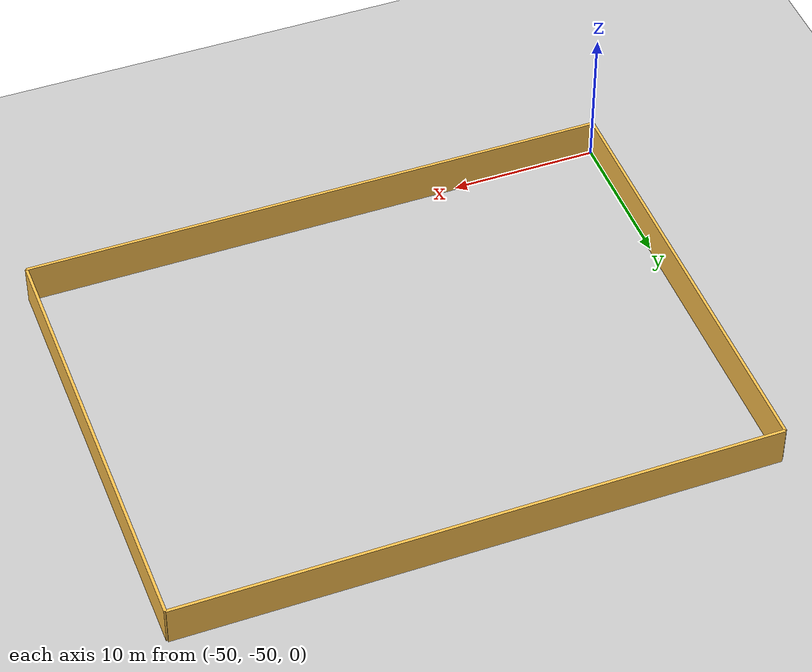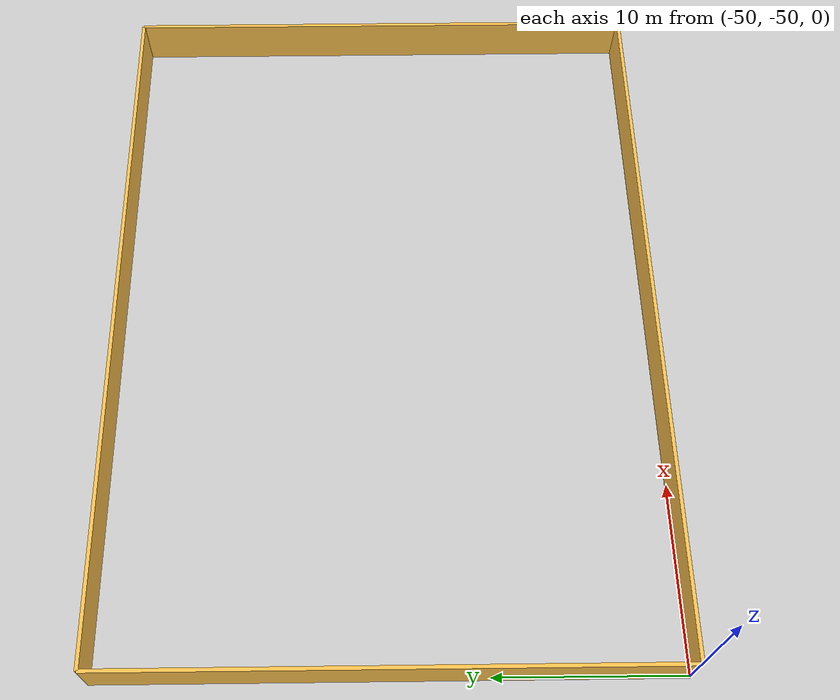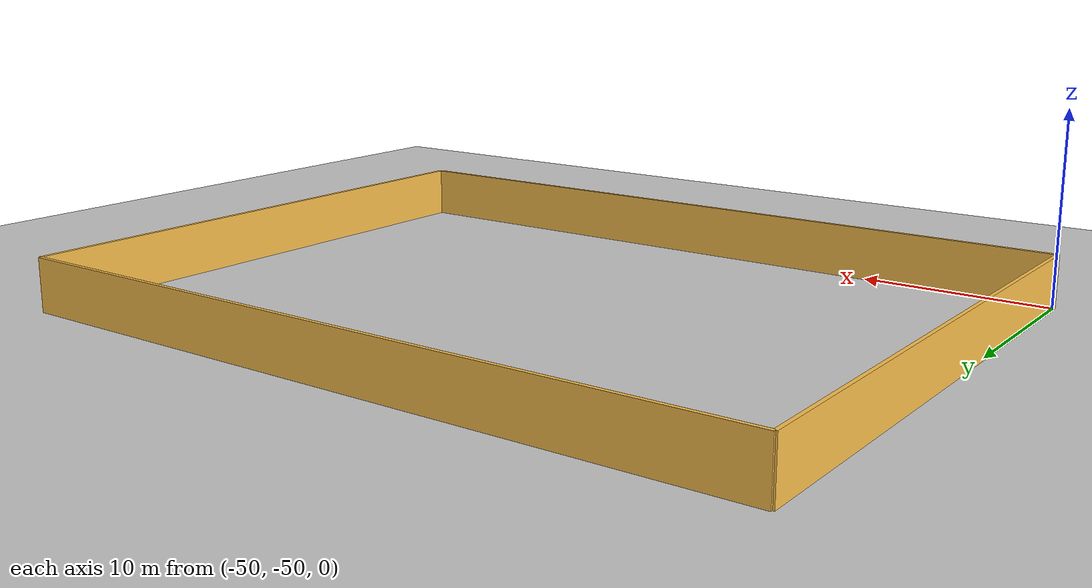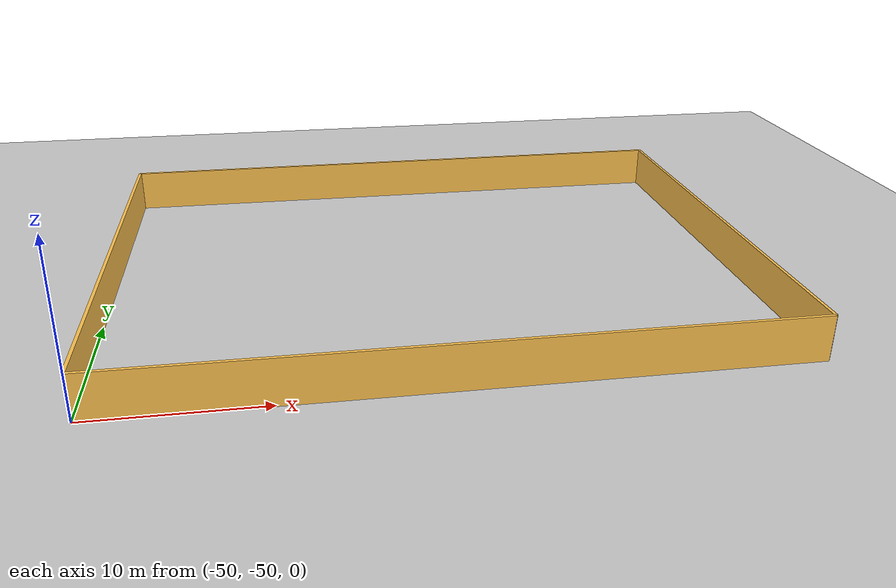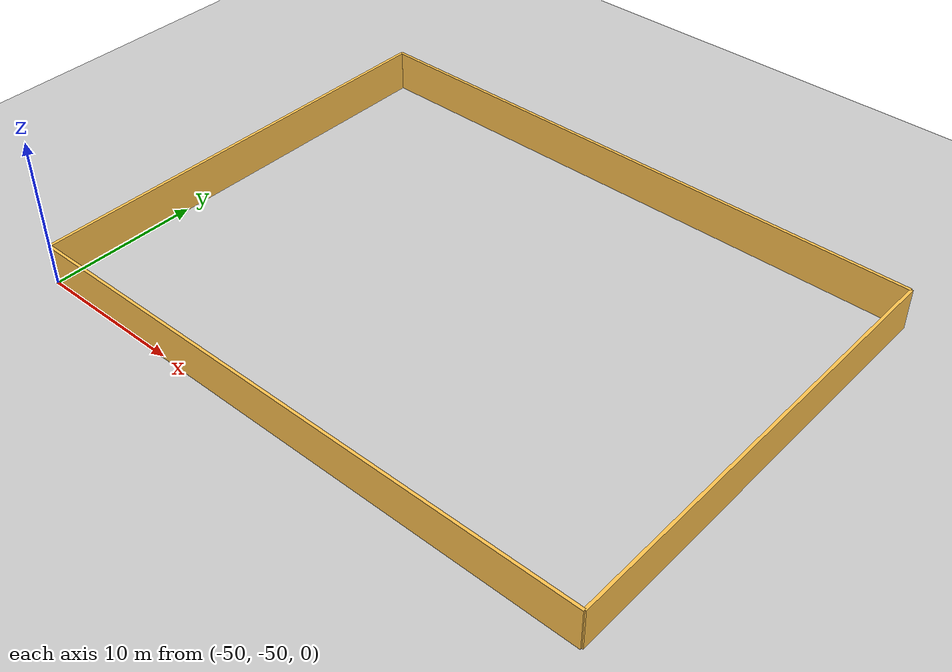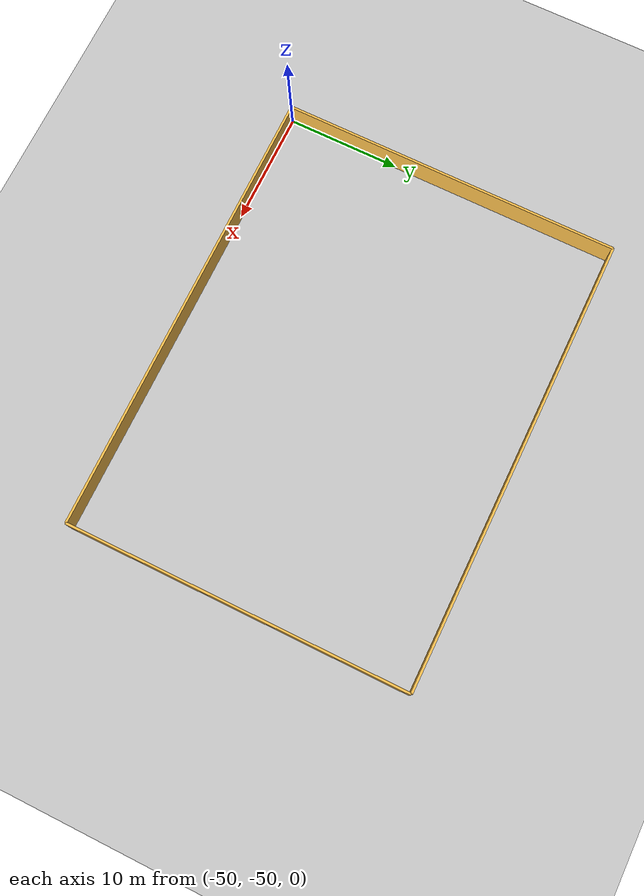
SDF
<sdf version="1.6">
 <world name="default">
  <model name="ground_plane">
   <static>1</static>
   <link name="link">
    <collision name="collision">
     <geometry><plane><normal>0 0 1</normal><size>100 100</size></plane></geometry>
     <surface>
      <contact><collide_bitmask>65535</collide_bitmask></contact>
      <friction><ode><mu>100</mu><mu2>50</mu2></ode></friction>
     </surface>
    </collision>
    <visual name="visual">
     <cast_shadows>0</cast_shadows>
     <geometry><plane><normal>0 0 1</normal><size>100 100</size></plane></geometry>
     <material>
      <script><uri>file://media/materials/scripts/gazebo.material</uri><name>Gazebo/Grey</name></script>
     </material>
    </visual>
   </link>
  </model>
  <model name="grey_wall">
   <static>1</static>
   <link name="link_1">
    <pose>20 0 1.4 0 -0 0</pose>
    <inertial>
     <inertia><ixx>nan</ixx><ixy>0</ixy><ixz>0</ixz><iyy>nan</iyy><iyz>0</iyz><izz>nan</izz></inertia>
     <mass>0</mass>
    </inertial>
    <visual name="visual_1">
     <cast_shadows>0</cast_shadows>
     <geometry><box><size>40 0.2 2.8</size></box></geometry>
     <material>
      <script>
       <uri>model://env_wall/grey_wall/materials/scripts</uri>
       <uri>model://env_wall/grey_wall/materials/textures</uri>
       <name>vrc/grey_wall</name>
      </script>
      <ambient>1 0.764706 0.305882 1</ambient>
      <shader type="pixel"/>
      <diffuse>0.7 0.7 0.7 1</diffuse>
      <specular>0.01 0.01 0.01 1</specular>
      <emissive>0 0 0 1</emissive>
     </material>
    </visual>
    <collision name="collision_1">
     <geometry><box><size>40 0.2 2.8</size></box></geometry>
     <surface>
      <friction>
       <ode><mu>1</mu><mu2>1</mu2><fdir1>0 0 0</fdir1><slip1>0</slip1><slip2>0</slip2></ode>
       <torsional>
        <coefficient>1</coefficient>
        <patch_radius>0</patch_radius>
        <surface_radius>0</surface_radius>
        <use_patch_radius>1</use_patch_radius>
        <ode><slip>0</slip></ode>
       </torsional>
      </friction>
      <bounce><restitution_coefficient>0</restitution_coefficient><threshold>1e+06</threshold></bounce>
      <contact>
       <collide_without_contact>0</collide_without_contact>
       <collide_without_contact_bitmask>1</collide_without_contact_bitmask>
       <collide_bitmask>1</collide_bitmask>
       <ode>
        <soft_cfm>0</soft_cfm>
        <soft_erp>0.2</soft_erp>
        <kp>1e+13</kp>
        <kd>1</kd>
        <max_vel>0.01</max_vel>
        <min_depth>0</min_depth>
       </ode>
       <bullet>
        <split_impulse>1</split_impulse>
        <split_impulse_penetration_threshold>-0.01</split_impulse_penetration_threshold>
        <soft_cfm>0</soft_cfm>
        <soft_erp>0.2</soft_erp>
        <kp>1e+13</kp>
        <kd>1</kd>
       </bullet>
      </contact>
     </surface>
    </collision>
   </link>
   <link name="link_2">
    <pose>20 30 1.4 0 -0 0</pose>
    <inertial>
     <inertia><ixx>nan</ixx><ixy>0</ixy><ixz>0</ixz><iyy>nan</iyy><iyz>0</iyz><izz>nan</izz></inertia>
     <mass>0</mass>
    </inertial>
    <visual name="visual_2">
     <cast_shadows>0</cast_shadows>
     <geometry><box><size>40 0.2 2.8</size></box></geometry>
     <material>
      <script>
       <uri>model://env_wall/grey_wall/materials/scripts</uri>
       <uri>model://env_wall/grey_wall/materials/textures</uri>
       <name>vrc/grey_wall</name>
      </script>
      <ambient>1 0.764706 0.305882 1</ambient>
      <shader type="pixel"/>
      <diffuse>0.7 0.7 0.7 1</diffuse>
      <specular>0.01 0.01 0.01 1</specular>
      <emissive>0 0 0 1</emissive>
     </material>
    </visual>
    <collision name="collision_2">
     <geometry><box><size>40 0.2 2.8</size></box></geometry>
     <surface>
      <friction>
       <ode><mu>1</mu><mu2>1</mu2><fdir1>0 0 0</fdir1><slip1>0</slip1><slip2>0</slip2></ode>
       <torsional>
        <coefficient>1</coefficient>
        <patch_radius>0</patch_radius>
        <surface_radius>0</surface_radius>
        <use_patch_radius>1</use_patch_radius>
        <ode><slip>0</slip></ode>
       </torsional>
      </friction>
      <bounce><restitution_coefficient>0</restitution_coefficient><threshold>1e+06</threshold></bounce>
      <contact>
       <collide_without_contact>0</collide_without_contact>
       <collide_without_contact_bitmask>1</collide_without_contact_bitmask>
       <collide_bitmask>1</collide_bitmask>
       <ode>
        <soft_cfm>0</soft_cfm>
        <soft_erp>0.2</soft_erp>
        <kp>1e+13</kp>
        <kd>1</kd>
        <max_vel>0.01</max_vel>
        <min_depth>0</min_depth>
       </ode>
       <bullet>
        <split_impulse>1</split_impulse>
        <split_impulse_penetration_threshold>-0.01</split_impulse_penetration_threshold>
        <soft_cfm>0</soft_cfm>
        <soft_erp>0.2</soft_erp>
        <kp>1e+13</kp>
        <kd>1</kd>
       </bullet>
      </contact>
     </surface>
    </collision>
   </link>
   <link name="link_3">
    <pose>0 15 1.4 0 -0 1.57</pose>
    <inertial>
     <inertia><ixx>nan</ixx><ixy>0</ixy><ixz>0</ixz><iyy>nan</iyy><iyz>0</iyz><izz>nan</izz></inertia>
     <mass>0</mass>
    </inertial>
    <visual name="visual_3">
     <cast_shadows>0</cast_shadows>
     <geometry><box><size>30 0.2 2.8</size></box></geometry>
     <material>
      <script>
       <uri>model://env_wall/grey_wall/materials/scripts</uri>
       <uri>model://env_wall/grey_wall/materials/textures</uri>
       <name>vrc/grey_wall</name>
      </script>
      <ambient>1 0.764706 0.305882 1</ambient>
      <shader type="pixel"/>
      <diffuse>0.7 0.7 0.7 1</diffuse>
      <specular>0.01 0.01 0.01 1</specular>
      <emissive>0 0 0 1</emissive>
     </material>
    </visual>
    <collision name="collision_3">
     <geometry><box><size>30 0.2 2.8</size></box></geometry>
     <surface>
      <friction>
       <ode><mu>1</mu><mu2>1</mu2><fdir1>0 0 0</fdir1><slip1>0</slip1><slip2>0</slip2></ode>
       <torsional>
        <coefficient>1</coefficient>
        <patch_radius>0</patch_radius>
        <surface_radius>0</surface_radius>
        <use_patch_radius>1</use_patch_radius>
        <ode><slip>0</slip></ode>
       </torsional>
      </friction>
      <bounce><restitution_coefficient>0</restitution_coefficient><threshold>1e+06</threshold></bounce>
      <contact>
       <collide_without_contact>0</collide_without_contact>
       <collide_without_contact_bitmask>1</collide_without_contact_bitmask>
       <collide_bitmask>1</collide_bitmask>
       <ode>
        <soft_cfm>0</soft_cfm>
        <soft_erp>0.2</soft_erp>
        <kp>1e+13</kp>
        <kd>1</kd>
        <max_vel>0.01</max_vel>
        <min_depth>0</min_depth>
       </ode>
       <bullet>
        <split_impulse>1</split_impulse>
        <split_impulse_penetration_threshold>-0.01</split_impulse_penetration_threshold>
        <soft_cfm>0</soft_cfm>
        <soft_erp>0.2</soft_erp>
        <kp>1e+13</kp>
        <kd>1</kd>
       </bullet>
      </contact>
     </surface>
    </collision>
   </link>
   <link name="link_4">
    <pose>40 15 1.4 0 -0 1.57</pose>
    <inertial>
     <inertia><ixx>nan</ixx><ixy>0</ixy><ixz>0</ixz><iyy>nan</iyy><iyz>0</iyz><izz>nan</izz></inertia>
     <mass>0</mass>
    </inertial>
    <visual name="visual_4">
     <cast_shadows>0</cast_shadows>
     <geometry><box><size>30 0.2 2.8</size></box></geometry>
     <material>
      <script>
       <uri>model://env_wall/grey_wall/materials/scripts</uri>
       <uri>model://env_wall/grey_wall/materials/textures</uri>
       <name>vrc/grey_wall</name>
      </script>
      <ambient>1 0.764706 0.305882 1</ambient>
      <shader type="pixel"/>
      <diffuse>0.7 0.7 0.7 1</diffuse>
      <specular>0.01 0.01 0.01 1</specular>
      <emissive>0 0 0 1</emissive>
     </material>
    </visual>
    <collision name="collision_4">
     <geometry><box><size>30 0.2 2.8</size></box></geometry>
     <surface>
      <friction>
       <ode><mu>1</mu><mu2>1</mu2><fdir1>0 0 0</fdir1><slip1>0</slip1><slip2>0</slip2></ode>
       <torsional>
        <coefficient>1</coefficient>
        <patch_radius>0</patch_radius>
        <surface_radius>0</surface_radius>
        <use_patch_radius>1</use_patch_radius>
        <ode><slip>0</slip></ode>
       </torsional>
      </friction>
      <bounce><restitution_coefficient>0</restitution_coefficient><threshold>1e+06</threshold></bounce>
      <contact>
       <collide_without_contact>0</collide_without_contact>
       <collide_without_contact_bitmask>1</collide_without_contact_bitmask>
       <collide_bitmask>1</collide_bitmask>
       <ode>
        <soft_cfm>0</soft_cfm>
        <soft_erp>0.2</soft_erp>
        <kp>1e+13</kp>
        <kd>1</kd>
        <max_vel>0.01</max_vel>
        <min_depth>0</min_depth>
       </ode>
       <bullet>
        <split_impulse>1</split_impulse>
        <split_impulse_penetration_threshold>-0.01</split_impulse_penetration_threshold>
        <soft_cfm>0</soft_cfm>
        <soft_erp>0.2</soft_erp>
        <kp>1e+13</kp>
        <kd>1</kd>
       </bullet>
      </contact>
     </surface>
    </collision>
   </link>
   <pose>-50 -50 0 0 -0 0</pose>
  </model>
 </world>
</sdf>
